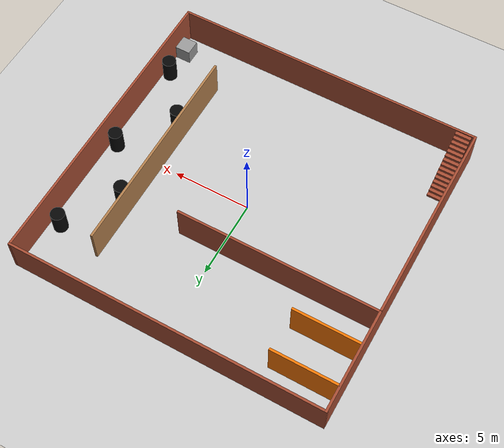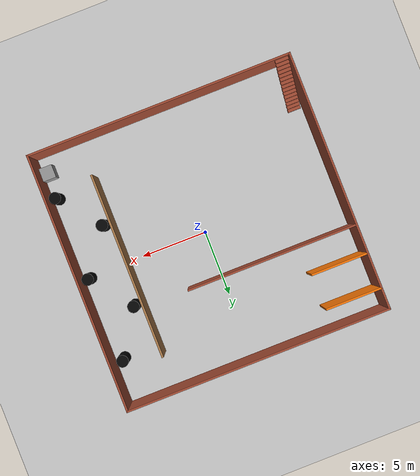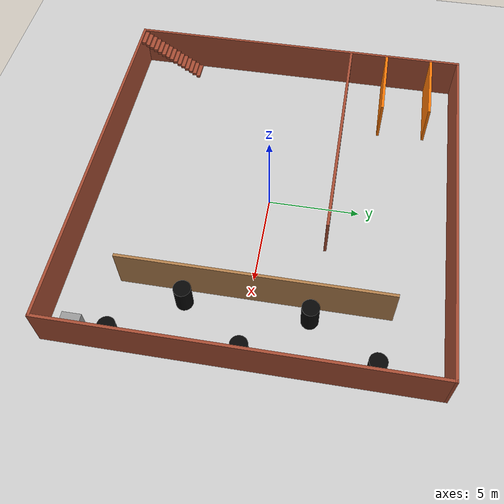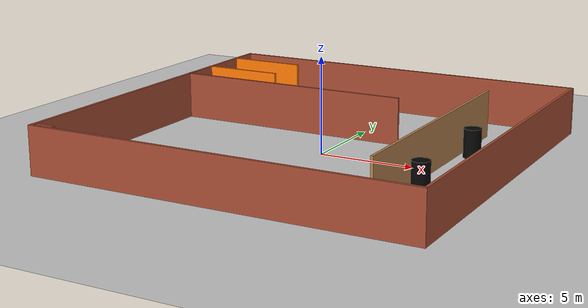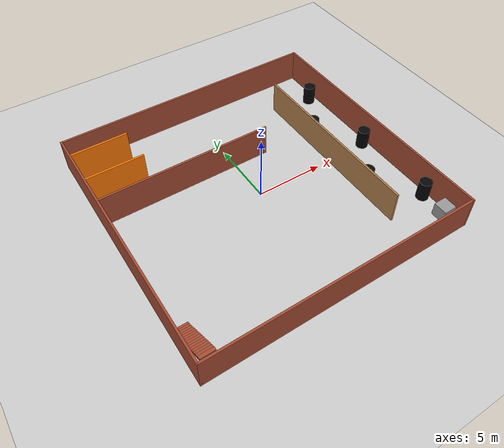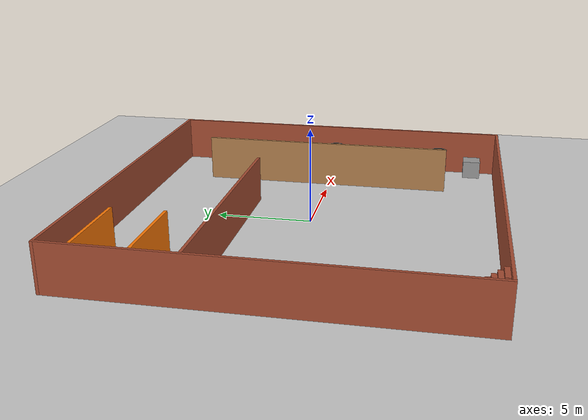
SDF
<sdf version="1.7">
  <world name="default">
   <plugin name="gazebo_ros_state" filename="libgazebo_ros_state.so">
    <ros>
     <namespace>/gazebo</namespace>
    </ros>
   </plugin>
    <light name="sun" type="directional">
      <cast_shadows>1</cast_shadows>
      <pose>0 0 10 0 -0 0</pose>
      <diffuse>0.8 0.8 0.8 1</diffuse>
      <specular>0.2 0.2 0.2 1</specular>
      <attenuation>
        <range>1000</range>
        <constant>0.9</constant>
        <linear>0.01</linear>
        <quadratic>0.001</quadratic>
      </attenuation>
      <direction>-0.5 0.1 -0.9</direction>
      <spot>
        <inner_angle>0</inner_angle>
        <outer_angle>0</outer_angle>
        <falloff>0</falloff>
      </spot>
    </light>
    <model name="ground_plane">
      <static>1</static>
      <link name="link">
        <collision name="collision">
          <geometry>
            <plane>
              <normal>0 0 1</normal>
              <size>100 100</size>
            </plane>
          </geometry>
          <surface>
            <contact>
              <collide_bitmask>65535</collide_bitmask>
              <ode />
            </contact>
            <friction>
              <ode>
                <mu>100</mu>
                <mu2>50</mu2>
              </ode>
              <torsional>
                <ode />
              </torsional>
            </friction>
            <bounce />
          </surface>
          <max_contacts>10</max_contacts>
        </collision>
        <visual name="visual">
          <cast_shadows>0</cast_shadows>
          <geometry>
            <plane>
              <normal>0 0 1</normal>
              <size>100 100</size>
            </plane>
          </geometry>
          <material>
            <script>
              <uri>file://media/materials/scripts/gazebo.material</uri>
              <name>Gazebo/Grey</name>
            </script>
          </material>
        </visual>
        <self_collide>0</self_collide>
        <enable_wind>0</enable_wind>
        <kinematic>0</kinematic>
      </link>
    </model>
    <gravity>0 0 -9.8</gravity>
    <magnetic_field>6e-06 2.3e-05 -4.2e-05</magnetic_field>
    <atmosphere type="adiabatic" />
    <physics type="ode">
      <max_step_size>0.004</max_step_size>
      <real_time_factor>1</real_time_factor>
      <real_time_update_rate>250</real_time_update_rate>
    </physics>
    <scene>
      <ambient>0.4 0.4 0.4 1</ambient>
      <background>0.7 0.7 0.7 1</background>
      <shadows>1</shadows>
    </scene>
    <audio>
      <device>default</device>
    </audio>
    <wind />
    <spherical_coordinates>
      <surface_model>EARTH_WGS84</surface_model>
      <latitude_deg>0</latitude_deg>
      <longitude_deg>0</longitude_deg>
      <elevation>0</elevation>
      <heading_deg>0</heading_deg>
    </spherical_coordinates>
    <model name="mppid">
      <pose>-0.219007 0.100688 0 0 -0 0</pose>
      <link name="Stairs_0">
        <visual name="Stairs_0_Visual_0">
          <pose>-9.36464 -6.29035 0.083333 0 -0 0</pose>
          <geometry>
            <box>
              <size>1 0.233333 0.166667</size>
            </box>
          </geometry>
          <material>
            <script>
              <uri>file://media/materials/scripts/gazebo.material</uri>
              <name>Gazebo/Bricks</name>
            </script>
            <ambient>1 1 1 1</ambient>
          </material>
          <meta>
            <layer>0</layer>
          </meta>
        </visual>
        <collision name="Stairs_0_Collision_0">
          <geometry>
            <box>
              <size>1 0.233333 0.166667</size>
            </box>
          </geometry>
          <pose>-9.36464 -6.29035 0.083333 0 -0 0</pose>
          <max_contacts>10</max_contacts>
          <surface>
            <contact>
              <ode />
            </contact>
            <bounce />
            <friction>
              <torsional>
                <ode />
              </torsional>
              <ode />
            </friction>
          </surface>
        </collision>
        <visual name="Stairs_0_Visual_1">
          <pose>-9.36464 -6.52369 0.25 0 -0 0</pose>
          <geometry>
            <box>
              <size>1 0.233333 0.166667</size>
            </box>
          </geometry>
          <material>
            <script>
              <uri>file://media/materials/scripts/gazebo.material</uri>
              <name>Gazebo/Bricks</name>
            </script>
            <ambient>1 1 1 1</ambient>
          </material>
          <meta>
            <layer>0</layer>
          </meta>
        </visual>
        <collision name="Stairs_0_Collision_1">
          <geometry>
            <box>
              <size>1 0.233333 0.166667</size>
            </box>
          </geometry>
          <pose>-9.36464 -6.52369 0.25 0 -0 0</pose>
          <max_contacts>10</max_contacts>
          <surface>
            <contact>
              <ode />
            </contact>
            <bounce />
            <friction>
              <torsional>
                <ode />
              </torsional>
              <ode />
            </friction>
          </surface>
        </collision>
        <visual name="Stairs_0_Visual_2">
          <pose>-9.36464 -6.75702 0.416667 0 -0 0</pose>
          <geometry>
            <box>
              <size>1 0.233333 0.166667</size>
            </box>
          </geometry>
          <material>
            <script>
              <uri>file://media/materials/scripts/gazebo.material</uri>
              <name>Gazebo/Bricks</name>
            </script>
            <ambient>1 1 1 1</ambient>
          </material>
          <meta>
            <layer>0</layer>
          </meta>
        </visual>
        <collision name="Stairs_0_Collision_2">
          <geometry>
            <box>
              <size>1 0.233333 0.166667</size>
            </box>
          </geometry>
          <pose>-9.36464 -6.75702 0.416667 0 -0 0</pose>
          <max_contacts>10</max_contacts>
          <surface>
            <contact>
              <ode />
            </contact>
            <bounce />
            <friction>
              <torsional>
                <ode />
              </torsional>
              <ode />
            </friction>
          </surface>
        </collision>
        <visual name="Stairs_0_Visual_3">
          <pose>-9.36464 -6.99035 0.583333 0 -0 0</pose>
          <geometry>
            <box>
              <size>1 0.233333 0.166667</size>
            </box>
          </geometry>
          <material>
            <script>
              <uri>file://media/materials/scripts/gazebo.material</uri>
              <name>Gazebo/Bricks</name>
            </script>
            <ambient>1 1 1 1</ambient>
          </material>
          <meta>
            <layer>0</layer>
          </meta>
        </visual>
        <collision name="Stairs_0_Collision_3">
          <geometry>
            <box>
              <size>1 0.233333 0.166667</size>
            </box>
          </geometry>
          <pose>-9.36464 -6.99035 0.583333 0 -0 0</pose>
          <max_contacts>10</max_contacts>
          <surface>
            <contact>
              <ode />
            </contact>
            <bounce />
            <friction>
              <torsional>
                <ode />
              </torsional>
              <ode />
            </friction>
          </surface>
        </collision>
        <visual name="Stairs_0_Visual_4">
          <pose>-9.36464 -7.22368 0.75 0 -0 0</pose>
          <geometry>
            <box>
              <size>1 0.233333 0.166667</size>
            </box>
          </geometry>
          <material>
            <script>
              <uri>file://media/materials/scripts/gazebo.material</uri>
              <name>Gazebo/Bricks</name>
            </script>
            <ambient>1 1 1 1</ambient>
          </material>
          <meta>
            <layer>0</layer>
          </meta>
        </visual>
        <collision name="Stairs_0_Collision_4">
          <geometry>
            <box>
              <size>1 0.233333 0.166667</size>
            </box>
          </geometry>
          <pose>-9.36464 -7.22368 0.75 0 -0 0</pose>
          <max_contacts>10</max_contacts>
          <surface>
            <contact>
              <ode />
            </contact>
            <bounce />
            <friction>
              <torsional>
                <ode />
              </torsional>
              <ode />
            </friction>
          </surface>
        </collision>
        <visual name="Stairs_0_Visual_5">
          <pose>-9.36464 -7.45702 0.916667 0 -0 0</pose>
          <geometry>
            <box>
              <size>1 0.233333 0.166667</size>
            </box>
          </geometry>
          <material>
            <script>
              <uri>file://media/materials/scripts/gazebo.material</uri>
              <name>Gazebo/Bricks</name>
            </script>
            <ambient>1 1 1 1</ambient>
          </material>
          <meta>
            <layer>0</layer>
          </meta>
        </visual>
        <collision name="Stairs_0_Collision_5">
          <geometry>
            <box>
              <size>1 0.233333 0.166667</size>
            </box>
          </geometry>
          <pose>-9.36464 -7.45702 0.916667 0 -0 0</pose>
          <max_contacts>10</max_contacts>
          <surface>
            <contact>
              <ode />
            </contact>
            <bounce />
            <friction>
              <torsional>
                <ode />
              </torsional>
              <ode />
            </friction>
          </surface>
        </collision>
        <visual name="Stairs_0_Visual_6">
          <pose>-9.36464 -7.69035 1.08333 0 -0 0</pose>
          <geometry>
            <box>
              <size>1 0.233333 0.166667</size>
            </box>
          </geometry>
          <material>
            <script>
              <uri>file://media/materials/scripts/gazebo.material</uri>
              <name>Gazebo/Bricks</name>
            </script>
            <ambient>1 1 1 1</ambient>
          </material>
          <meta>
            <layer>0</layer>
          </meta>
        </visual>
        <collision name="Stairs_0_Collision_6">
          <geometry>
            <box>
              <size>1 0.233333 0.166667</size>
            </box>
          </geometry>
          <pose>-9.36464 -7.69035 1.08333 0 -0 0</pose>
          <max_contacts>10</max_contacts>
          <surface>
            <contact>
              <ode />
            </contact>
            <bounce />
            <friction>
              <torsional>
                <ode />
              </torsional>
              <ode />
            </friction>
          </surface>
        </collision>
        <visual name="Stairs_0_Visual_7">
          <pose>-9.36464 -7.92368 1.25 0 -0 0</pose>
          <geometry>
            <box>
              <size>1 0.233333 0.166667</size>
            </box>
          </geometry>
          <material>
            <script>
              <uri>file://media/materials/scripts/gazebo.material</uri>
              <name>Gazebo/Bricks</name>
            </script>
            <ambient>1 1 1 1</ambient>
          </material>
          <meta>
            <layer>0</layer>
          </meta>
        </visual>
        <collision name="Stairs_0_Collision_7">
          <geometry>
            <box>
              <size>1 0.233333 0.166667</size>
            </box>
          </geometry>
          <pose>-9.36464 -7.92368 1.25 0 -0 0</pose>
          <max_contacts>10</max_contacts>
          <surface>
            <contact>
              <ode />
            </contact>
            <bounce />
            <friction>
              <torsional>
                <ode />
              </torsional>
              <ode />
            </friction>
          </surface>
        </collision>
        <visual name="Stairs_0_Visual_8">
          <pose>-9.36464 -8.15702 1.41667 0 -0 0</pose>
          <geometry>
            <box>
              <size>1 0.233333 0.166667</size>
            </box>
          </geometry>
          <material>
            <script>
              <uri>file://media/materials/scripts/gazebo.material</uri>
              <name>Gazebo/Bricks</name>
            </script>
            <ambient>1 1 1 1</ambient>
          </material>
          <meta>
            <layer>0</layer>
          </meta>
        </visual>
        <collision name="Stairs_0_Collision_8">
          <geometry>
            <box>
              <size>1 0.233333 0.166667</size>
            </box>
          </geometry>
          <pose>-9.36464 -8.15702 1.41667 0 -0 0</pose>
          <max_contacts>10</max_contacts>
          <surface>
            <contact>
              <ode />
            </contact>
            <bounce />
            <friction>
              <torsional>
                <ode />
              </torsional>
              <ode />
            </friction>
          </surface>
        </collision>
        <visual name="Stairs_0_Visual_9">
          <pose>-9.36464 -8.39035 1.58333 0 -0 0</pose>
          <geometry>
            <box>
              <size>1 0.233333 0.166667</size>
            </box>
          </geometry>
          <material>
            <script>
              <uri>file://media/materials/scripts/gazebo.material</uri>
              <name>Gazebo/Bricks</name>
            </script>
            <ambient>1 1 1 1</ambient>
          </material>
          <meta>
            <layer>0</layer>
          </meta>
        </visual>
        <collision name="Stairs_0_Collision_9">
          <geometry>
            <box>
              <size>1 0.233333 0.166667</size>
            </box>
          </geometry>
          <pose>-9.36464 -8.39035 1.58333 0 -0 0</pose>
          <max_contacts>10</max_contacts>
          <surface>
            <contact>
              <ode />
            </contact>
            <bounce />
            <friction>
              <torsional>
                <ode />
              </torsional>
              <ode />
            </friction>
          </surface>
        </collision>
        <visual name="Stairs_0_Visual_10">
          <pose>-9.36464 -8.62369 1.75 0 -0 0</pose>
          <geometry>
            <box>
              <size>1 0.233333 0.166667</size>
            </box>
          </geometry>
          <material>
            <script>
              <uri>file://media/materials/scripts/gazebo.material</uri>
              <name>Gazebo/Bricks</name>
            </script>
            <ambient>1 1 1 1</ambient>
          </material>
          <meta>
            <layer>0</layer>
          </meta>
        </visual>
        <collision name="Stairs_0_Collision_10">
          <geometry>
            <box>
              <size>1 0.233333 0.166667</size>
            </box>
          </geometry>
          <pose>-9.36464 -8.62369 1.75 0 -0 0</pose>
          <max_contacts>10</max_contacts>
          <surface>
            <contact>
              <ode />
            </contact>
            <bounce />
            <friction>
              <torsional>
                <ode />
              </torsional>
              <ode />
            </friction>
          </surface>
        </collision>
        <visual name="Stairs_0_Visual_11">
          <pose>-9.36464 -8.85702 1.91667 0 -0 0</pose>
          <geometry>
            <box>
              <size>1 0.233333 0.166667</size>
            </box>
          </geometry>
          <material>
            <script>
              <uri>file://media/materials/scripts/gazebo.material</uri>
              <name>Gazebo/Bricks</name>
            </script>
            <ambient>1 1 1 1</ambient>
          </material>
          <meta>
            <layer>0</layer>
          </meta>
        </visual>
        <collision name="Stairs_0_Collision_11">
          <geometry>
            <box>
              <size>1 0.233333 0.166667</size>
            </box>
          </geometry>
          <pose>-9.36464 -8.85702 1.91667 0 -0 0</pose>
          <max_contacts>10</max_contacts>
          <surface>
            <contact>
              <ode />
            </contact>
            <bounce />
            <friction>
              <torsional>
                <ode />
              </torsional>
              <ode />
            </friction>
          </surface>
        </collision>
        <visual name="Stairs_0_Visual_12">
          <pose>-9.36464 -9.09035 2.08333 0 -0 0</pose>
          <geometry>
            <box>
              <size>1 0.233333 0.166667</size>
            </box>
          </geometry>
          <material>
            <script>
              <uri>file://media/materials/scripts/gazebo.material</uri>
              <name>Gazebo/Bricks</name>
            </script>
            <ambient>1 1 1 1</ambient>
          </material>
          <meta>
            <layer>0</layer>
          </meta>
        </visual>
        <collision name="Stairs_0_Collision_12">
          <geometry>
            <box>
              <size>1 0.233333 0.166667</size>
            </box>
          </geometry>
          <pose>-9.36464 -9.09035 2.08333 0 -0 0</pose>
          <max_contacts>10</max_contacts>
          <surface>
            <contact>
              <ode />
            </contact>
            <bounce />
            <friction>
              <torsional>
                <ode />
              </torsional>
              <ode />
            </friction>
          </surface>
        </collision>
        <visual name="Stairs_0_Visual_13">
          <pose>-9.36464 -9.32368 2.25 0 -0 0</pose>
          <geometry>
            <box>
              <size>1 0.233333 0.166667</size>
            </box>
          </geometry>
          <material>
            <script>
              <uri>file://media/materials/scripts/gazebo.material</uri>
              <name>Gazebo/Bricks</name>
            </script>
            <ambient>1 1 1 1</ambient>
          </material>
          <meta>
            <layer>0</layer>
          </meta>
        </visual>
        <collision name="Stairs_0_Collision_13">
          <geometry>
            <box>
              <size>1 0.233333 0.166667</size>
            </box>
          </geometry>
          <pose>-9.36464 -9.32368 2.25 0 -0 0</pose>
          <max_contacts>10</max_contacts>
          <surface>
            <contact>
              <ode />
            </contact>
            <bounce />
            <friction>
              <torsional>
                <ode />
              </torsional>
              <ode />
            </friction>
          </surface>
        </collision>
        <visual name="Stairs_0_Visual_14">
          <pose>-9.36464 -9.55702 2.41667 0 -0 0</pose>
          <geometry>
            <box>
              <size>1 0.233333 0.166667</size>
            </box>
          </geometry>
          <material>
            <script>
              <uri>file://media/materials/scripts/gazebo.material</uri>
              <name>Gazebo/Bricks</name>
            </script>
            <ambient>1 1 1 1</ambient>
          </material>
          <meta>
            <layer>0</layer>
          </meta>
        </visual>
        <collision name="Stairs_0_Collision_14">
          <geometry>
            <box>
              <size>1 0.233333 0.166667</size>
            </box>
          </geometry>
          <pose>-9.36464 -9.55702 2.41667 0 -0 0</pose>
          <max_contacts>10</max_contacts>
          <surface>
            <contact>
              <ode />
            </contact>
            <bounce />
            <friction>
              <torsional>
                <ode />
              </torsional>
              <ode />
            </friction>
          </surface>
        </collision>
        <self_collide>0</self_collide>
        <enable_wind>0</enable_wind>
        <kinematic>0</kinematic>
      </link>
      <link name="Wall_49">
        <collision name="Wall_49_Collision">
          <geometry>
            <box>
              <size>19.75 0.15 2.5</size>
            </box>
          </geometry>
          <pose>0 0 1.25 0 -0 0</pose>
          <max_contacts>10</max_contacts>
          <surface>
            <contact>
              <ode />
            </contact>
            <bounce />
            <friction>
              <torsional>
                <ode />
              </torsional>
              <ode />
            </friction>
          </surface>
        </collision>
        <visual name="Wall_49_Visual">
          <pose>0 0 1.25 0 -0 0</pose>
          <geometry>
            <box>
              <size>19.75 0.15 2.5</size>
            </box>
          </geometry>
          <material>
            <script>
              <uri>file://media/materials/scripts/gazebo.material</uri>
              <name>Gazebo/Bricks</name>
            </script>
            <ambient>1 1 1 1</ambient>
          </material>
          <meta>
            <layer>0</layer>
          </meta>
        </visual>
        <pose>-10.05 0 0 0 -0 -1.5708</pose>
        <self_collide>0</self_collide>
        <enable_wind>0</enable_wind>
        <kinematic>0</kinematic>
      </link>
      <link name="Wall_50">
        <collision name="Wall_50_Collision">
          <geometry>
            <box>
              <size>20.25 0.15 2.5</size>
            </box>
          </geometry>
          <pose>0 0 1.25 0 -0 0</pose>
          <max_contacts>10</max_contacts>
          <surface>
            <contact>
              <ode />
            </contact>
            <bounce />
            <friction>
              <torsional>
                <ode />
              </torsional>
              <ode />
            </friction>
          </surface>
        </collision>
        <visual name="Wall_50_Visual">
          <pose>0 0 1.25 0 -0 0</pose>
          <geometry>
            <box>
              <size>20.25 0.15 2.5</size>
            </box>
          </geometry>
          <material>
            <script>
              <uri>file://media/materials/scripts/gazebo.material</uri>
              <name>Gazebo/Bricks</name>
            </script>
            <ambient>1 1 1 1</ambient>
          </material>
          <meta>
            <layer>0</layer>
          </meta>
        </visual>
        <pose>-0 -9.8 0 0 -0 0</pose>
        <self_collide>0</self_collide>
        <enable_wind>0</enable_wind>
        <kinematic>0</kinematic>
      </link>
      <link name="Wall_51">
        <collision name="Wall_51_Collision">
          <geometry>
            <box>
              <size>19.75 0.15 2.5</size>
            </box>
          </geometry>
          <pose>0 0 1.25 0 -0 0</pose>
          <max_contacts>10</max_contacts>
          <surface>
            <contact>
              <ode />
            </contact>
            <bounce />
            <friction>
              <torsional>
                <ode />
              </torsional>
              <ode />
            </friction>
          </surface>
        </collision>
        <visual name="Wall_51_Visual">
          <pose>0 0 1.25 0 -0 0</pose>
          <geometry>
            <box>
              <size>19.75 0.15 2.5</size>
            </box>
          </geometry>
          <material>
            <script>
              <uri>file://media/materials/scripts/gazebo.material</uri>
              <name>Gazebo/Bricks</name>
            </script>
            <ambient>1 1 1 1</ambient>
          </material>
          <meta>
            <layer>0</layer>
          </meta>
        </visual>
        <pose>10.05 0 0 0 -0 1.5708</pose>
        <self_collide>0</self_collide>
        <enable_wind>0</enable_wind>
        <kinematic>0</kinematic>
      </link>
      <link name="Wall_52">
        <collision name="Wall_52_Collision">
          <geometry>
            <box>
              <size>20.25 0.15 2.5</size>
            </box>
          </geometry>
          <pose>0 0 1.25 0 -0 0</pose>
          <max_contacts>10</max_contacts>
          <surface>
            <contact>
              <ode />
            </contact>
            <bounce />
            <friction>
              <torsional>
                <ode />
              </torsional>
              <ode />
            </friction>
          </surface>
        </collision>
        <visual name="Wall_52_Visual">
          <pose>0 0 1.25 0 -0 0</pose>
          <geometry>
            <box>
              <size>20.25 0.15 2.5</size>
            </box>
          </geometry>
          <material>
            <script>
              <uri>file://media/materials/scripts/gazebo.material</uri>
              <name>Gazebo/Bricks</name>
            </script>
            <ambient>1 1 1 1</ambient>
          </material>
          <meta>
            <layer>0</layer>
          </meta>
        </visual>
        <pose>-0 9.8 0 0 -0 3.14159</pose>
        <self_collide>0</self_collide>
        <enable_wind>0</enable_wind>
        <kinematic>0</kinematic>
      </link>
      <link name="Wall_56">
        <collision name="Wall_56_Collision">
          <geometry>
            <box>
              <size>14 0.15 2.5</size>
            </box>
          </geometry>
          <pose>0 0 1.25 0 -0 0</pose>
          <max_contacts>10</max_contacts>
          <surface>
            <contact>
              <ode />
            </contact>
            <bounce />
            <friction>
              <torsional>
                <ode />
              </torsional>
              <ode />
            </friction>
          </surface>
        </collision>
        <visual name="Wall_56_Visual">
          <pose>0 0 1.25 0 -0 0</pose>
          <geometry>
            <box>
              <size>14 0.15 2.5</size>
            </box>
          </geometry>
          <material>
            <script>
              <uri>file://media/materials/scripts/gazebo.material</uri>
              <name>Gazebo/Wood</name>
            </script>
            <ambient>1 1 1 1</ambient>
          </material>
          <meta>
            <layer>0</layer>
          </meta>
        </visual>
        <pose>6.29801 0.125079 0 0 -0 -1.5708</pose>
        <self_collide>0</self_collide>
        <enable_wind>0</enable_wind>
        <kinematic>0</kinematic>
      </link>
      <link name="Wall_59">
        <collision name="Wall_59_Collision">
          <geometry>
            <box>
              <size>13 0.15 2.5</size>
            </box>
          </geometry>
          <pose>0 0 1.25 0 -0 0</pose>
          <max_contacts>10</max_contacts>
          <surface>
            <contact>
              <ode />
            </contact>
            <bounce />
            <friction>
              <torsional>
                <ode />
              </torsional>
              <ode />
            </friction>
          </surface>
        </collision>
        <visual name="Wall_59_Visual">
          <pose>0 0 1.25 0 -0 0</pose>
          <geometry>
            <box>
              <size>13 0.15 2.5</size>
            </box>
          </geometry>
          <material>
            <script>
              <uri>file://media/materials/scripts/gazebo.material</uri>
              <name>Gazebo/Bricks</name>
            </script>
            <ambient>0.435294 0.796078 0.67451 1</ambient>
          </material>
          <meta>
            <layer>0</layer>
          </meta>
        </visual>
        <pose>-3.60883 3.33079 0 0 -0 0</pose>
        <self_collide>0</self_collide>
        <enable_wind>0</enable_wind>
        <kinematic>0</kinematic>
      </link>
      <link name="Wall_61">
        <collision name="Wall_61_Collision">
          <geometry>
            <box>
              <size>4.25 0.15 2.5</size>
            </box>
          </geometry>
          <pose>0 0 1.25 0 -0 0</pose>
          <max_contacts>10</max_contacts>
          <surface>
            <contact>
              <ode />
            </contact>
            <bounce />
            <friction>
              <torsional>
                <ode />
              </torsional>
              <ode />
            </friction>
          </surface>
        </collision>
        <visual name="Wall_61_Visual">
          <pose>0 0 1.25 0 -0 0</pose>
          <geometry>
            <box>
              <size>4.25 0.15 2.5</size>
            </box>
          </geometry>
          <material>
            <script>
              <uri>file://media/materials/scripts/gazebo.material</uri>
              <name>Gazebo/Grey</name>
            </script>
            <ambient>0.996078 0.47451 0.0196078 1</ambient>
          </material>
          <meta>
            <layer>0</layer>
          </meta>
        </visual>
        <pose>-7.92299 8.19759 0 0 -0 0</pose>
        <self_collide>0</self_collide>
        <enable_wind>0</enable_wind>
        <kinematic>0</kinematic>
      </link>
      <link name="Wall_64">
        <collision name="Wall_64_Collision">
          <geometry>
            <box>
              <size>4.25 0.15 2.5</size>
            </box>
          </geometry>
          <pose>0 0 1.25 0 -0 0</pose>
          <max_contacts>10</max_contacts>
          <surface>
            <contact>
              <ode />
            </contact>
            <bounce />
            <friction>
              <torsional>
                <ode />
              </torsional>
              <ode />
            </friction>
          </surface>
        </collision>
        <visual name="Wall_64_Visual">
          <pose>0 0 1.25 0 -0 0</pose>
          <geometry>
            <box>
              <size>4.25 0.15 2.5</size>
            </box>
          </geometry>
          <material>
            <script>
              <uri>file://media/materials/scripts/gazebo.material</uri>
              <name>Gazebo/Grey</name>
            </script>
            <ambient>0.996078 0.47451 0.0196078 1</ambient>
          </material>
          <meta>
            <layer>0</layer>
          </meta>
        </visual>
        <pose>-7.86216 5.52085 0 0 -0 0</pose>
        <self_collide>0</self_collide>
        <enable_wind>0</enable_wind>
        <kinematic>0</kinematic>
      </link>
      <static>1</static>
    </model>
    <model name="unit_box_2">
      <pose>9.24731 -8.31087 0.5 0 -0 0</pose>
      <link name="link">
        <inertial>
          <mass>1</mass>
          <inertia>
            <ixx>0.166667</ixx>
            <ixy>0</ixy>
            <ixz>0</ixz>
            <iyy>0.166667</iyy>
            <iyz>0</iyz>
            <izz>0.166667</izz>
          </inertia>
          <pose>0 0 0 0 -0 0</pose>
        </inertial>
        <collision name="collision">
          <geometry>
            <box>
              <size>1 1 1</size>
            </box>
          </geometry>
          <max_contacts>10</max_contacts>
          <surface>
            <contact>
              <ode />
            </contact>
            <bounce />
            <friction>
              <torsional>
                <ode />
              </torsional>
              <ode />
            </friction>
          </surface>
        </collision>
        <visual name="visual">
          <geometry>
            <box>
              <size>1 1 1</size>
            </box>
          </geometry>
          <material>
            <script>
              <name>Gazebo/Grey</name>
              <uri>file://media/materials/scripts/gazebo.material</uri>
            </script>
          </material>
        </visual>
        <self_collide>0</self_collide>
        <enable_wind>0</enable_wind>
        <kinematic>0</kinematic>
      </link>
    </model>
    <model name="moving_obstacle_0">
      <static>0</static>
      <pose>9.30841 -6.31228 0 0 0 0</pose>
      <link name="link">
        <kinematic>1</kinematic>
        <inertial>
          <mass>5.0</mass>
          <inertia>
            <ixx>1.190625</ixx>
            <ixy>0.000000</ixy>
            <ixz>0.000000</ixz>
            <iyy>1.190625</iyy>
            <iyz>0.000000</iyz>
            <izz>0.506250</izz>
          </inertia>
          <pose>0 0 0 0 0 0</pose>
        </inertial>
        <collision name="collision">
          <pose>0 0 0.750 0 0 0</pose>
          <geometry>
            <cylinder>
              <radius>0.45</radius>
              <length>1.5</length>
            </cylinder>
          </geometry>
          <surface>
            <contact>
              <collide_bitmask>65535</collide_bitmask>
              <ode />
            </contact>
            <friction>
              <ode>
                <mu>1.0</mu>
                <mu2>1.0</mu2>
              </ode>
            </friction>
          </surface>
          <max_contacts>10</max_contacts>
        </collision>
        <visual name="visual">
          <cast_shadows>0</cast_shadows>
          <pose>0 0 0.750 0 0 0</pose>
          <geometry>
            <cylinder>
              <radius>0.45</radius>
              <length>1.5</length>
            </cylinder>
          </geometry>
          <material>
            <ambient>0.02 0.02 0.02 1</ambient>
            <diffuse>0.02 0.02 0.02 1</diffuse>
            <specular>0 0 0 1</specular>
          </material>
        </visual>
        <self_collide>0</self_collide>
        <enable_wind>0</enable_wind>
      </link>
    </model>
    <model name="moving_obstacle_1">
      <static>0</static>
      <pose>6.83478 -3.22509 0 0 0 0</pose>
      <link name="link">
        <kinematic>1</kinematic>
        <inertial>
          <mass>5.0</mass>
          <inertia>
            <ixx>1.190625</ixx>
            <ixy>0.000000</ixy>
            <ixz>0.000000</ixz>
            <iyy>1.190625</iyy>
            <iyz>0.000000</iyz>
            <izz>0.506250</izz>
          </inertia>
          <pose>0 0 0 0 0 0</pose>
        </inertial>
        <collision name="collision">
          <pose>0 0 0.750 0 0 0</pose>
          <geometry>
            <cylinder>
              <radius>0.45</radius>
              <length>1.5</length>
            </cylinder>
          </geometry>
          <surface>
            <contact>
              <collide_bitmask>65535</collide_bitmask>
              <ode />
            </contact>
            <friction>
              <ode>
                <mu>1.0</mu>
                <mu2>1.0</mu2>
              </ode>
            </friction>
          </surface>
          <max_contacts>10</max_contacts>
        </collision>
        <visual name="visual">
          <cast_shadows>0</cast_shadows>
          <pose>0 0 0.750 0 0 0</pose>
          <geometry>
            <cylinder>
              <radius>0.45</radius>
              <length>1.5</length>
            </cylinder>
          </geometry>
          <material>
            <ambient>0.02 0.02 0.02 1</ambient>
            <diffuse>0.02 0.02 0.02 1</diffuse>
            <specular>0 0 0 1</specular>
          </material>
        </visual>
        <self_collide>0</self_collide>
        <enable_wind>0</enable_wind>
      </link>
    </model>
    <model name="moving_obstacle_2">
      <static>0</static>
      <pose>9.25506 0.07550 0 0 0 0</pose>
      <link name="link">
        <kinematic>1</kinematic>
        <inertial>
          <mass>5.0</mass>
          <inertia>
            <ixx>1.190625</ixx>
            <ixy>0.000000</ixy>
            <ixz>0.000000</ixz>
            <iyy>1.190625</iyy>
            <iyz>0.000000</iyz>
            <izz>0.506250</izz>
          </inertia>
          <pose>0 0 0 0 0 0</pose>
        </inertial>
        <collision name="collision">
          <pose>0 0 0.750 0 0 0</pose>
          <geometry>
            <cylinder>
              <radius>0.45</radius>
              <length>1.5</length>
            </cylinder>
          </geometry>
          <surface>
            <contact>
              <collide_bitmask>65535</collide_bitmask>
              <ode />
            </contact>
            <friction>
              <ode>
                <mu>1.0</mu>
                <mu2>1.0</mu2>
              </ode>
            </friction>
          </surface>
          <max_contacts>10</max_contacts>
        </collision>
        <visual name="visual">
          <cast_shadows>0</cast_shadows>
          <pose>0 0 0.750 0 0 0</pose>
          <geometry>
            <cylinder>
              <radius>0.45</radius>
              <length>1.5</length>
            </cylinder>
          </geometry>
          <material>
            <ambient>0.02 0.02 0.02 1</ambient>
            <diffuse>0.02 0.02 0.02 1</diffuse>
            <specular>0 0 0 1</specular>
          </material>
        </visual>
        <self_collide>0</self_collide>
        <enable_wind>0</enable_wind>
      </link>
    </model>
    <model name="moving_obstacle_3">
      <static>0</static>
      <pose>6.85481 3.14924 0 0 0 0</pose>
      <link name="link">
        <kinematic>1</kinematic>
        <inertial>
          <mass>5.0</mass>
          <inertia>
            <ixx>1.190625</ixx>
            <ixy>0.000000</ixy>
            <ixz>0.000000</ixz>
            <iyy>1.190625</iyy>
            <iyz>0.000000</iyz>
            <izz>0.506250</izz>
          </inertia>
          <pose>0 0 0 0 0 0</pose>
        </inertial>
        <collision name="collision">
          <pose>0 0 0.750 0 0 0</pose>
          <geometry>
            <cylinder>
              <radius>0.45</radius>
              <length>1.5</length>
            </cylinder>
          </geometry>
          <surface>
            <contact>
              <collide_bitmask>65535</collide_bitmask>
              <ode />
            </contact>
            <friction>
              <ode>
                <mu>1.0</mu>
                <mu2>1.0</mu2>
              </ode>
            </friction>
          </surface>
          <max_contacts>10</max_contacts>
        </collision>
        <visual name="visual">
          <cast_shadows>0</cast_shadows>
          <pose>0 0 0.750 0 0 0</pose>
          <geometry>
            <cylinder>
              <radius>0.45</radius>
              <length>1.5</length>
            </cylinder>
          </geometry>
          <material>
            <ambient>0.02 0.02 0.02 1</ambient>
            <diffuse>0.02 0.02 0.02 1</diffuse>
            <specular>0 0 0 1</specular>
          </material>
        </visual>
        <self_collide>0</self_collide>
        <enable_wind>0</enable_wind>
      </link>
    </model>
    <model name="moving_obstacle_4">
      <static>0</static>
      <pose>9.05466 6.55929 0 0 0 0</pose>
      <link name="link">
        <kinematic>1</kinematic>
        <inertial>
          <mass>5.0</mass>
          <inertia>
            <ixx>1.190625</ixx>
            <ixy>0.000000</ixy>
            <ixz>0.000000</ixz>
            <iyy>1.190625</iyy>
            <iyz>0.000000</iyz>
            <izz>0.506250</izz>
          </inertia>
          <pose>0 0 0 0 0 0</pose>
        </inertial>
        <collision name="collision">
          <pose>0 0 0.750 0 0 0</pose>
          <geometry>
            <cylinder>
              <radius>0.45</radius>
              <length>1.5</length>
            </cylinder>
          </geometry>
          <surface>
            <contact>
              <collide_bitmask>65535</collide_bitmask>
              <ode />
            </contact>
            <friction>
              <ode>
                <mu>1.0</mu>
                <mu2>1.0</mu2>
              </ode>
            </friction>
          </surface>
          <max_contacts>10</max_contacts>
        </collision>
        <visual name="visual">
          <cast_shadows>0</cast_shadows>
          <pose>0 0 0.750 0 0 0</pose>
          <geometry>
            <cylinder>
              <radius>0.45</radius>
              <length>1.5</length>
            </cylinder>
          </geometry>
          <material>
            <ambient>0.02 0.02 0.02 1</ambient>
            <diffuse>0.02 0.02 0.02 1</diffuse>
            <specular>0 0 0 1</specular>
          </material>
        </visual>
        <self_collide>0</self_collide>
        <enable_wind>0</enable_wind>
      </link>
    </model>
    <gui fullscreen="0">
      <camera name="user_camera">
        <pose>-7.89105 48.4235 47.4649 0 0.593797 -1.53542</pose>
        <view_controller>orbit</view_controller>
        <projection_type>perspective</projection_type>
      </camera>
    </gui>
  </world>
</sdf>
